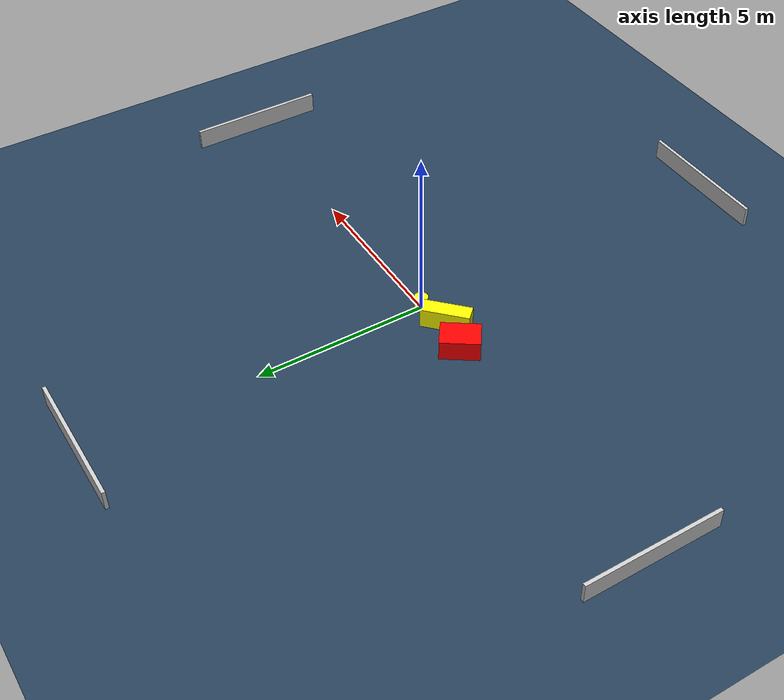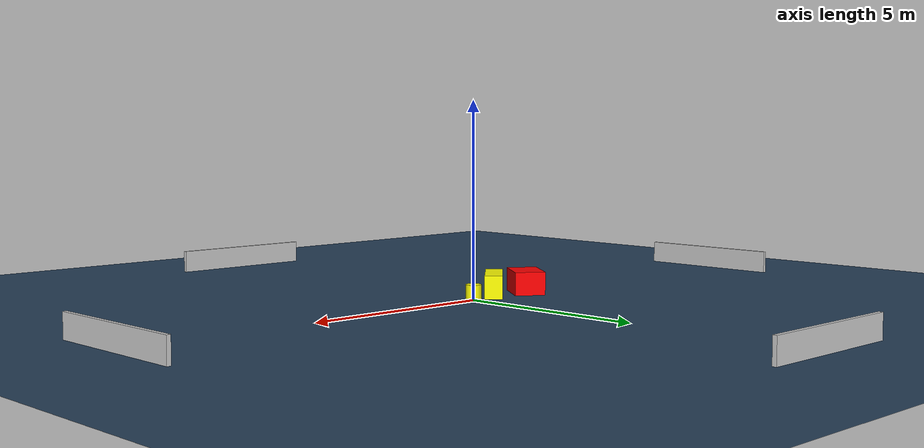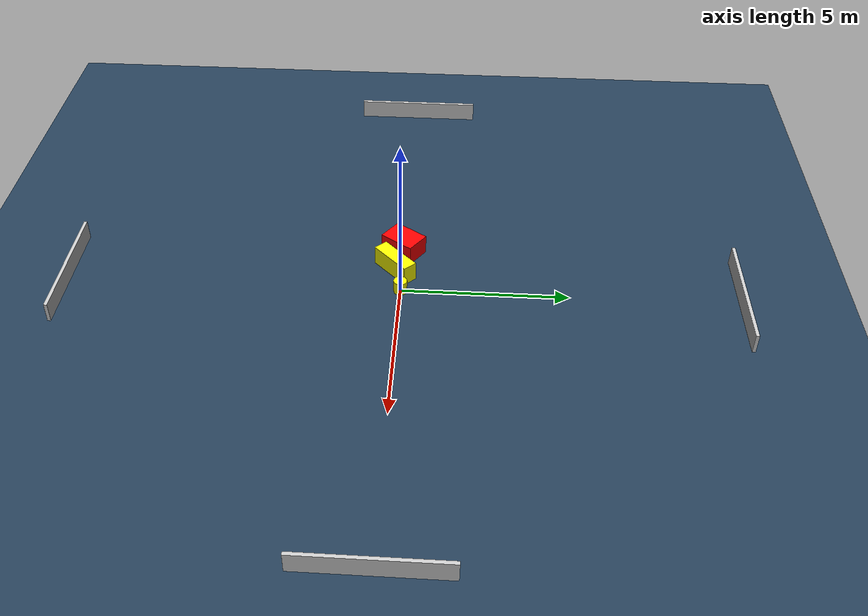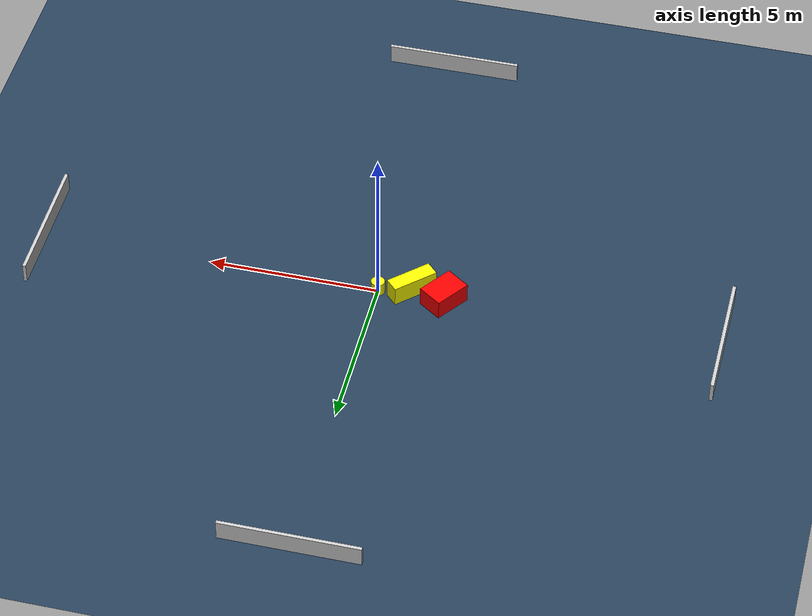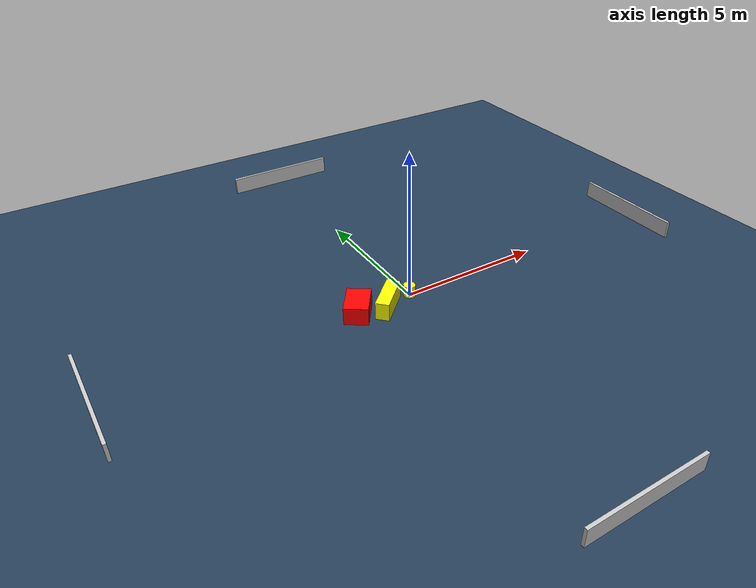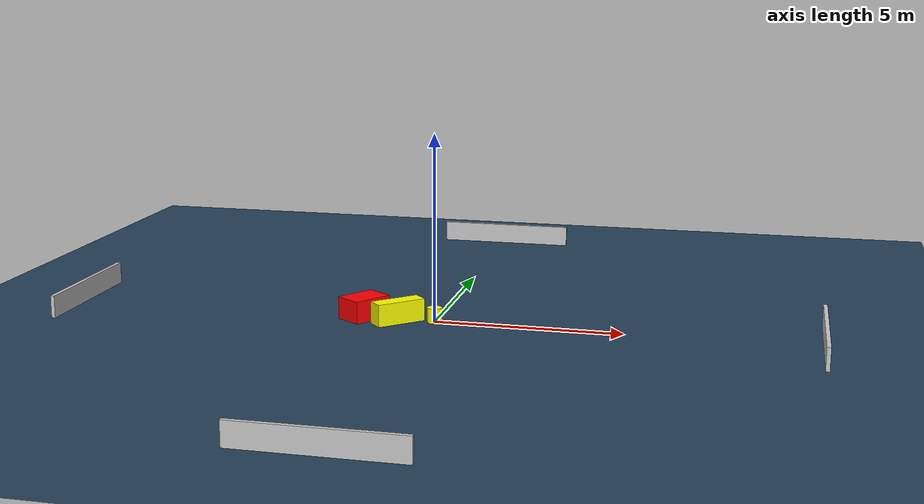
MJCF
<?xml version="1.0" ?>
<mujoco model="generated_environment">
  <option timestep="0.01" integrator="RK4" cone="elliptic"/>
  <default>
    <geom density="1"/>
  </default>
  <asset>
    <texture builtin="gradient" height="3072" name="skybox" rgb1="0.3 0.5 0.7" rgb2="0 0 0" type="skybox" width="512"/>
    <texture builtin="checker" height="300" name="groundplane" rgb1="0.2 0.3 0.4" rgb2="0.1 0.2 0.3" type="2d" width="300"/>
    <material name="groundplane" reflectance="0.2" texrepeat="5 5" texture="groundplane"/>
  </asset>
  <worldbody>
    <light dir="0 0 -1" directional="true" pos="0 0 1.5"/>
    <geom condim="3" friction="0.5 0.005 0.001" material="groundplane" name="floor" pos="0 0 0" size="0 0 0.05" type="plane"/>
    <body name="walls">
      <geom name="wall_1" condim="4" pos="-10.0 0.0 0.3" rgba="0.800000011920929 0.800000011920929 0.800000011920929 1.0" size="0.05 2.0 0.3" type="box"/>
      <geom name="wall_2" condim="4" pos="10.0 0.0 0.3" rgba="0.800000011920929 0.800000011920929 0.800000011920929 1.0" size="0.05 2.0 0.3" type="box"/>
      <geom name="wall_3" condim="4" pos="0.0 -10.0 0.3" rgba="0.800000011920929 0.800000011920929 0.800000011920929 1.0" size="2.0 0.05 0.3" type="box"/>
      <geom name="wall_4" condim="4" pos="0.0 10.0 0.3" rgba="0.800000011920929 0.800000011920929 0.800000011920929 1.0" size="2.0 0.05 0.3" type="box"/>
    </body>
    <body name="robot">
      <joint name="joint_x" type="slide" pos="0 0 0" axis="1 0 0"/>
      <joint name="joint_y" type="slide" pos="0 0 0" axis="0 1 0"/>
      <geom name="robot" type="cylinder" pos="0.0 0.0 0.2" size="0.2 0.2 0.0" mass="5.0" friction="1.0 0.005 0.0001" condim="4" rgba="1.0 1.0 0.0 1.0"/>
    </body>
    <body name="obstacle_1_movable">
      <geom name="obstacle_1_movable" condim="4" pos="-0.9468083012498039 -0.21512155517934853 0.3" euler="0 0 313.66784186543157" friction="0.0 0.005 0.001" rgba="1.0 1.0 0.0 1.0" size="0.2246711825354145 0.6907696526638369 0.3" type="box" mass="0.1"/>
      <joint type="free"/>
    </body>
    <body name="obstacle_2_static">
      <geom name="obstacle_2_static" condim="4" pos="-1.9340432746253864 -0.016621656747498475 0.3" euler="0 0 144.92772076860993" friction="0.0 0.005 0.001" rgba="1.0 0.0 0.0 1.0" size="0.39305745830778194 0.5569041815380742 0.3" type="box"/>
    </body>
  </worldbody>
  <actuator>
    <motor name="actuator_x" joint="joint_x" gear="1" ctrlrange="-1 1"/>
    <motor name="actuator_y" joint="joint_y" gear="1" ctrlrange="-1 1"/>
  </actuator>
</mujoco>
